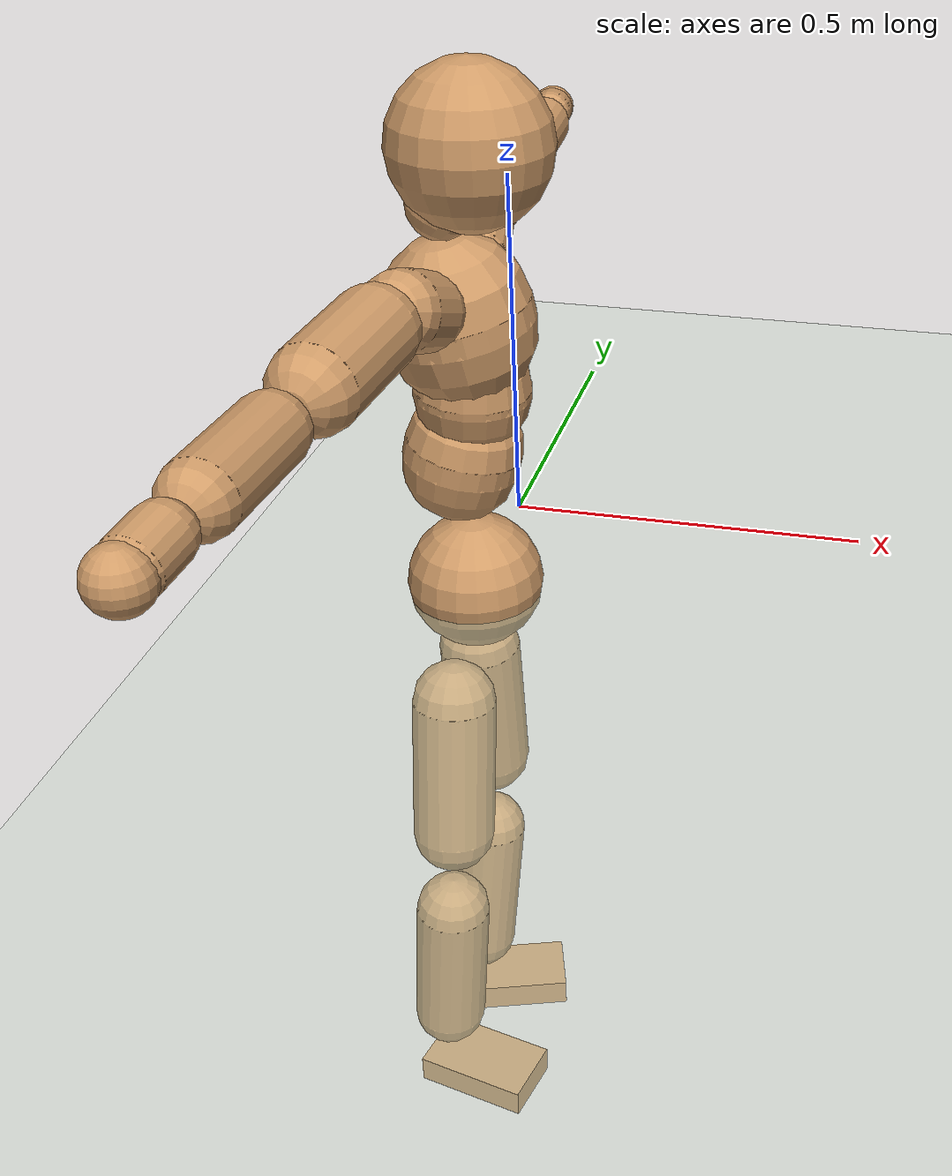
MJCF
<mujoco model="humanoid">
  <compiler coordinate="local" angle="radian"/>
  <default>
    <joint damping="0.0" armature="0.01" stiffness="0.0" limited="true"/>
    <geom conaffinity="1" condim="3" contype="7" margin="0.001" rgba="0.8 0.6 .4 1"/>
  </default>
  <asset>
    <texture type="skybox" builtin="gradient" rgb1=".4 .5 .6" rgb2="0 0 0" width="100" height="100"/>
    <texture builtin="flat" height="1278" mark="cross" markrgb="1 1 1" name="texgeom" random="0.01" rgb1="0.8 0.6 0.4" rgb2="0.8 0.6 0.4" type="cube" width="127"/>
    <texture builtin="checker" height="100" name="texplane" rgb1="0 0 0" rgb2="0.8 0.8 0.8" type="2d" width="100"/>
    <material name="MatPlane" reflectance="0.5" shininess="1" specular="1" texrepeat="60 60" texture="texplane"/>
    <material name="geom" texture="texgeom" texuniform="true"/>
  </asset>
  <worldbody>
    <light cutoff="100" diffuse="1 1 1" dir="-0 0 -1.3" directional="true" exponent="1" pos="0 0 1.3" specular=".1 .1 .1"/>
    <geom conaffinity="1" condim="3" name="floor" pos="0 0 0" rgba="0.8 0.9 0.8 1" size="100 100 .2" type="plane" material="MatPlane"/>
    <body name="Pelvis" pos="0.0016 -0.2333 0.0153">
      <freejoint name="Pelvis"/>
      <geom type="sphere" contype="1" conaffinity="1" density="500" size="0.0919" pos="0.0000 0.0000 0.0000" name="Pelvis"/>
      <body name="L_Hip" pos="-0.0212 0.0569 -0.08">
        <joint name="L_Hip_x" type="hinge" pos="0 0 0" axis="1 0 0" stiffness="800" damping="80" armature="0.02" range="-180.0000 180.0000"/>
        <joint name="L_Hip_y" type="hinge" pos="0 0 0" axis="0 1 0" stiffness="800" damping="80" armature="0.02" range="-180.0000 180.0000"/>
        <joint name="L_Hip_z" type="hinge" pos="0 0 0" axis="0 0 1" stiffness="800" damping="80" armature="0.02" range="-180.0000 180.0000"/>
        <geom type="capsule" contype="1" conaffinity="1" density="500" fromto="0.0004 0.0076 -0.0717 0.0014 0.0305 -0.2870" size="0.0578" name="L_Hip"/>
        <body name="L_Knee" pos="0.0018 0.0381 -0.3587">
          <joint name="L_Knee_x" type="hinge" pos="0 0 0" axis="1 0 0" stiffness="800" damping="80" armature="0.02" range="-180.0000 180.0000"/>
          <joint name="L_Knee_y" type="hinge" pos="0 0 0" axis="0 1 0" stiffness="800" damping="80" armature="0.02" range="-180.0000 180.0000"/>
          <joint name="L_Knee_z" type="hinge" pos="0 0 0" axis="0 0 1" stiffness="800" damping="80" armature="0.02" range="-180.0000 180.0000"/>
          <geom type="capsule" contype="1" conaffinity="1" density="500" fromto="-0.0074 -0.0027 -0.0761 -0.0296 -0.0110 -0.3043" size="0.0526" name="L_Knee"/>
          <body name="L_Ankle" pos="-0.0369 -0.0137 -0.3804">
            <joint name="L_Ankle_x" type="hinge" pos="0 0 0" axis="1 0 0" stiffness="800" damping="80" armature="0.02" range="-180.0000 180.0000"/>
            <joint name="L_Ankle_y" type="hinge" pos="0 0 0" axis="0 1 0" stiffness="800" damping="80" armature="0.02" range="-180.0000 180.0000"/>
            <joint name="L_Ankle_z" type="hinge" pos="0 0 0" axis="0 0 1" stiffness="800" damping="80" armature="0.02" range="-180.0000 180.0000"/>
            <geom type="box" contype="1" conaffinity="1" density="500" pos="0.0572 0.0186 -0.0273" size="0.0805 0.0481 0.0216" quat="0.9877 0.0000 0.0000 0.1564" name="L_Ankle"/>
            <body name="L_Toe" pos="0.1143 0.0371 -0.0547">
              <joint name="L_Toe_x" type="hinge" pos="0 0 0" axis="1 0 0" stiffness="500" damping="50" armature="0.02" range="-180.0000 180.0000"/>
              <joint name="L_Toe_y" type="hinge" pos="0 0 0" axis="0 1 0" stiffness="500" damping="50" armature="0.02" range="-180.0000 180.0000"/>
              <joint name="L_Toe_z" type="hinge" pos="0 0 0" axis="0 0 1" stiffness="500" damping="50" armature="0.02" range="-180.0000 180.0000"/>
              <geom type="box" contype="1" conaffinity="1" density="500" pos="0.0000 0.0000 0.0270" size="0.001 0.0024 0.0011" quat="0.9869 0.0000 0.0000 0.1616" name="L_Toe"/>
            </body>
          </body>
        </body>
      </body>
      <body name="R_Hip" pos="-0.0173 -0.0601 -0.0882">
        <joint name="R_Hip_x" type="hinge" pos="0 0 0" axis="1 0 0" stiffness="800" damping="80" armature="0.02" range="-180.0000 180.0000"/>
        <joint name="R_Hip_y" type="hinge" pos="0 0 0" axis="0 1 0" stiffness="800" damping="80" armature="0.02" range="-180.0000 180.0000"/>
        <joint name="R_Hip_z" type="hinge" pos="0 0 0" axis="0 0 1" stiffness="800" damping="80" armature="0.02" range="-180.0000 180.0000"/>
        <geom type="capsule" contype="1" conaffinity="1" density="500" fromto="-0.0016 -0.0079 -0.0710 -0.0062 -0.0317 -0.2839" size="0.0577" name="R_Hip"/>
        <body name="R_Knee" pos="-0.0078 -0.0396 -0.3548">
          <joint name="R_Knee_x" type="hinge" pos="0 0 0" axis="1 0 0" stiffness="800" damping="80" armature="0.02" range="-180.0000 180.0000"/>
          <joint name="R_Knee_y" type="hinge" pos="0 0 0" axis="0 1 0" stiffness="800" damping="80" armature="0.02" range="-180.0000 180.0000"/>
          <joint name="R_Knee_z" type="hinge" pos="0 0 0" axis="0 0 1" stiffness="800" damping="80" armature="0.02" range="-180.0000 180.0000"/>
          <geom type="capsule" contype="1" conaffinity="1" density="500" fromto="-0.0067 0.0036 -0.0749 -0.0268 0.0142 -0.2997" size="0.0533" name="R_Knee"/>
          <body name="R_Ankle" pos="-0.0335 0.0178 -0.3746">
            <joint name="R_Ankle_x" type="hinge" pos="0 0 0" axis="1 0 0" stiffness="800" damping="80" armature="0.02" range="-180.0000 180.0000"/>
            <joint name="R_Ankle_y" type="hinge" pos="0 0 0" axis="0 1 0" stiffness="800" damping="80" armature="0.02" range="-180.0000 180.0000"/>
            <joint name="R_Ankle_z" type="hinge" pos="0 0 0" axis="0 0 1" stiffness="800" damping="80" armature="0.02" range="-180.0000 180.0000"/>
            <geom type="box" contype="1" conaffinity="1" density="500" pos="0.0611 -0.0137 -0.0293" size="0.0849 0.0498 0.0214" quat="0.9939 0.0000 0.0000 -0.1102" name="R_Ankle"/>
            <body name="R_Toe" pos="0.1223 -0.0274 -0.0585">
              <joint name="R_Toe_x" type="hinge" pos="0 0 0" axis="1 0 0" stiffness="500" damping="50" armature="0.02" range="-180.0000 180.0000"/>
              <joint name="R_Toe_y" type="hinge" pos="0 0 0" axis="0 1 0" stiffness="500" damping="50" armature="0.02" range="-180.0000 180.0000"/>
              <joint name="R_Toe_z" type="hinge" pos="0 0 0" axis="0 0 1" stiffness="500" damping="50" armature="0.02" range="-180.0000 180.0000"/>
              <geom type="box" contype="1" conaffinity="1" density="500" pos="0.0000 0.0000 0.0308" size="0.001 0.0024 0.0011" quat="0.9949 0.0000 0.0000 -0.1008" name="R_Toe"/>
            </body>
          </body>
        </body>
      </body>
      <body name="Torso" pos="-0.0263 0.0039 0.1192">
        <joint name="Torso_x" type="hinge" pos="0 0 0" axis="1 0 0" stiffness="1000" damping="100" armature="0.02" range="-180.0000 180.0000"/>
        <joint name="Torso_y" type="hinge" pos="0 0 0" axis="0 1 0" stiffness="1000" damping="100" armature="0.02" range="-180.0000 180.0000"/>
        <joint name="Torso_z" type="hinge" pos="0 0 0" axis="0 0 1" stiffness="1000" damping="100" armature="0.02" range="-180.0000 180.0000"/>
        <geom type="capsule" contype="1" conaffinity="1" density="500" fromto="0.0188 0.0024 0.0792 0.0126 0.0016 0.0528" size="0.0772" name="Torso"/>
        <body name="Spine" pos="0.0314 0.004 0.132">
          <joint name="Spine_x" type="hinge" pos="0 0 0" axis="1 0 0" stiffness="1000" damping="100" armature="0.02" range="-180.0000 180.0000"/>
          <joint name="Spine_y" type="hinge" pos="0 0 0" axis="0 1 0" stiffness="1000" damping="100" armature="0.02" range="-180.0000 180.0000"/>
          <joint name="Spine_z" type="hinge" pos="0 0 0" axis="0 0 1" stiffness="1000" damping="100" armature="0.02" range="-180.0000 180.0000"/>
          <geom type="capsule" contype="1" conaffinity="1" density="500" fromto="0.0025 -0.0019 0.0319 0.0017 -0.0012 0.0213" size="0.0762" name="Spine"/>
          <body name="Chest" pos="0.0041 -0.0031 0.0531">
            <joint name="Chest_x" type="hinge" pos="0 0 0" axis="1 0 0" stiffness="1000" damping="100" armature="0.02" range="-180.0000 180.0000"/>
            <joint name="Chest_y" type="hinge" pos="0 0 0" axis="0 1 0" stiffness="1000" damping="100" armature="0.02" range="-180.0000 180.0000"/>
            <joint name="Chest_z" type="hinge" pos="0 0 0" axis="0 0 1" stiffness="1000" damping="100" armature="0.02" range="-180.0000 180.0000"/>
            <geom type="capsule" contype="1" conaffinity="1" density="500" fromto="-0.0155 -0.0055 0.0825 -0.0104 -0.0037 0.0550" size="0.0959" name="Chest"/>
            <body name="Neck" pos="-0.0349 -0.014 0.1987">
              <joint name="Neck_x" type="hinge" pos="0 0 0" axis="1 0 0" stiffness="500" damping="50" armature="0.02" range="-180.0000 180.0000"/>
              <joint name="Neck_y" type="hinge" pos="0 0 0" axis="0 1 0" stiffness="500" damping="50" armature="0.02" range="-180.0000 180.0000"/>
              <joint name="Neck_z" type="hinge" pos="0 0 0" axis="0 0 1" stiffness="500" damping="50" armature="0.02" range="-180.0000 180.0000"/>
              <geom type="capsule" contype="1" conaffinity="1" density="500" fromto="0.0095 0.0016 0.0174 0.0379 0.0062 0.0697" size="0.0436" name="Neck"/>
              <body name="Head" pos="0.0474 0.0078 0.0871">
                <joint name="Head_x" type="hinge" pos="0 0 0" axis="1 0 0" stiffness="500" damping="50" armature="0.02" range="-180.0000 180.0000"/>
                <joint name="Head_y" type="hinge" pos="0 0 0" axis="0 1 0" stiffness="500" damping="50" armature="0.02" range="-180.0000 180.0000"/>
                <joint name="Head_z" type="hinge" pos="0 0 0" axis="0 0 1" stiffness="500" damping="50" armature="0.02" range="-180.0000 180.0000"/>
                <geom type="sphere" contype="1" conaffinity="1" density="500" size="0.1015" pos="0.0000 0.0000 0.0000" name="Head"/>
              </body>
            </body>
            <body name="L_Thorax" pos="-0.0203 0.0666 0.1063">
              <joint name="L_Thorax_x" type="hinge" pos="0 0 0" axis="1 0 0" stiffness="500" damping="50" armature="0.02" range="-180.0000 180.0000"/>
              <joint name="L_Thorax_y" type="hinge" pos="0 0 0" axis="0 1 0" stiffness="500" damping="50" armature="0.02" range="-180.0000 180.0000"/>
              <joint name="L_Thorax_z" type="hinge" pos="0 0 0" axis="0 0 1" stiffness="500" damping="50" armature="0.02" range="-180.0000 180.0000"/>
              <geom type="capsule" contype="1" conaffinity="1" density="500" fromto="-0.0035 0.0231 0.0081 -0.0140 0.0926 0.0322" size="0.048" name="L_Thorax"/>
              <body name="L_Shoulder" pos="-0.0175 0.1157 0.0403">
                <joint name="L_Shoulder_x" type="hinge" pos="0 0 0" axis="1 0 0" stiffness="500" damping="50" armature="0.02" range="-720.0000 720.0000"/>
                <joint name="L_Shoulder_y" type="hinge" pos="0 0 0" axis="0 1 0" stiffness="500" damping="50" armature="0.02" range="-720.0000 720.0000"/>
                <joint name="L_Shoulder_z" type="hinge" pos="0 0 0" axis="0 0 1" stiffness="500" damping="50" armature="0.02" range="-720.0000 720.0000"/>
                <geom type="capsule" contype="1" conaffinity="1" density="500" fromto="-0.0028 0.0480 -0.0024 -0.0113 0.1919 -0.0095" size="0.0497" name="L_Shoulder"/>
                <body name="L_Elbow" pos="-0.0142 0.2399 -0.0119">
                  <joint name="L_Elbow_x" type="hinge" pos="0 0 0" axis="1 0 0" stiffness="500" damping="50" armature="0.02" range="-720.0000 720.0000"/>
                  <joint name="L_Elbow_y" type="hinge" pos="0 0 0" axis="0 1 0" stiffness="500" damping="50" armature="0.02" range="-720.0000 720.0000"/>
                  <joint name="L_Elbow_z" type="hinge" pos="0 0 0" axis="0 0 1" stiffness="500" damping="50" armature="0.02" range="-720.0000 720.0000"/>
                  <geom type="capsule" contype="1" conaffinity="1" density="500" fromto="-0.0021 0.0477 0.0015 -0.0084 0.1909 0.0061" size="0.0392" name="L_Elbow"/>
                  <body name="L_Wrist" pos="-0.0105 0.2386 0.0076">
                    <joint name="L_Wrist_x" type="hinge" pos="0 0 0" axis="1 0 0" stiffness="300" damping="30" armature="0.02" range="-180.0000 180.0000"/>
                    <joint name="L_Wrist_y" type="hinge" pos="0 0 0" axis="0 1 0" stiffness="300" damping="30" armature="0.02" range="-180.0000 180.0000"/>
                    <joint name="L_Wrist_z" type="hinge" pos="0 0 0" axis="0 0 1" stiffness="300" damping="30" armature="0.02" range="-180.0000 180.0000"/>
                    <geom type="capsule" contype="1" conaffinity="1" density="500" fromto="-0.0028 0.0156 -0.0019 -0.0111 0.0624 -0.0075" size="0.0311" name="L_Wrist"/>
                    <body name="L_Hand" pos="-0.0139 0.078 -0.0094">
                      <joint name="L_Hand_x" type="hinge" pos="0 0 0" axis="1 0 0" stiffness="300" damping="30" armature="0.02" range="-180.0000 180.0000"/>
                      <joint name="L_Hand_y" type="hinge" pos="0 0 0" axis="0 1 0" stiffness="300" damping="30" armature="0.02" range="-180.0000 180.0000"/>
                      <joint name="L_Hand_z" type="hinge" pos="0 0 0" axis="0 0 1" stiffness="300" damping="30" armature="0.02" range="-180.0000 180.0000"/>
                      <geom type="sphere" contype="1" conaffinity="1" density="500" size="0.0322" pos="0.0000 0.0000 0.0000" name="L_Hand"/>
                    </body>
                  </body>
                </body>
              </body>
            </body>
            <body name="R_Thorax" pos="-0.0225 -0.0801 0.1074">
              <joint name="R_Thorax_x" type="hinge" pos="0 0 0" axis="1 0 0" stiffness="500" damping="50" armature="0.02" range="-180.0000 180.0000"/>
              <joint name="R_Thorax_y" type="hinge" pos="0 0 0" axis="0 1 0" stiffness="500" damping="50" armature="0.02" range="-180.0000 180.0000"/>
              <joint name="R_Thorax_z" type="hinge" pos="0 0 0" axis="0 0 1" stiffness="500" damping="50" armature="0.02" range="-180.0000 180.0000"/>
              <geom type="capsule" contype="1" conaffinity="1" density="500" fromto="-0.0013 -0.0216 0.0084 -0.0054 -0.0862 0.0336" size="0.0488" name="R_Thorax"/>
              <body name="R_Shoulder" pos="-0.0067 -0.1078 0.042">
                <joint name="R_Shoulder_x" type="hinge" pos="0 0 0" axis="1 0 0" stiffness="500" damping="50" armature="0.02" range="-720.0000 720.0000"/>
                <joint name="R_Shoulder_y" type="hinge" pos="0 0 0" axis="0 1 0" stiffness="500" damping="50" armature="0.02" range="-720.0000 720.0000"/>
                <joint name="R_Shoulder_z" type="hinge" pos="0 0 0" axis="0 0 1" stiffness="500" damping="50" armature="0.02" range="-720.0000 720.0000"/>
                <geom type="capsule" contype="1" conaffinity="1" density="500" fromto="-0.0046 -0.0485 -0.0022 -0.0184 -0.1938 -0.0087" size="0.0515" name="R_Shoulder"/>
                <body name="R_Elbow" pos="-0.023 -0.2423 -0.0109">
                  <joint name="R_Elbow_x" type="hinge" pos="0 0 0" axis="1 0 0" stiffness="500" damping="50" armature="0.02" range="-720.0000 720.0000"/>
                  <joint name="R_Elbow_y" type="hinge" pos="0 0 0" axis="0 1 0" stiffness="500" damping="50" armature="0.02" range="-720.0000 720.0000"/>
                  <joint name="R_Elbow_z" type="hinge" pos="0 0 0" axis="0 0 1" stiffness="500" damping="50" armature="0.02" range="-720.0000 720.0000"/>
                  <geom type="capsule" contype="1" conaffinity="1" density="500" fromto="-0.0016 -0.0495 0.0013 -0.0064 -0.1980 0.0052" size="0.0411" name="R_Elbow"/>
                  <body name="R_Wrist" pos="-0.008 -0.2475 0.0066">
                    <joint name="R_Wrist_x" type="hinge" pos="0 0 0" axis="1 0 0" stiffness="300" damping="30" armature="0.02" range="-180.0000 180.0000"/>
                    <joint name="R_Wrist_y" type="hinge" pos="0 0 0" axis="0 1 0" stiffness="300" damping="30" armature="0.02" range="-180.0000 180.0000"/>
                    <joint name="R_Wrist_z" type="hinge" pos="0 0 0" axis="0 0 1" stiffness="300" damping="30" armature="0.02" range="-180.0000 180.0000"/>
                    <geom type="capsule" contype="1" conaffinity="1" density="500" fromto="-0.0018 -0.0164 -0.0016 -0.0072 -0.0657 -0.0062" size="0.0327" name="R_Wrist"/>
                    <body name="R_Hand" pos="-0.0089 -0.0821 -0.0078">
                      <joint name="R_Hand_x" type="hinge" pos="0 0 0" axis="1 0 0" stiffness="300" damping="30" armature="0.02" range="-180.0000 180.0000"/>
                      <joint name="R_Hand_y" type="hinge" pos="0 0 0" axis="0 1 0" stiffness="300" damping="30" armature="0.02" range="-180.0000 180.0000"/>
                      <joint name="R_Hand_z" type="hinge" pos="0 0 0" axis="0 0 1" stiffness="300" damping="30" armature="0.02" range="-180.0000 180.0000"/>
                      <geom type="sphere" contype="1" conaffinity="1" density="500" size="0.0336" pos="0.0000 0.0000 0.0000" name="R_Hand"/>
                    </body>
                  </body>
                </body>
              </body>
            </body>
          </body>
        </body>
      </body>
    </body>
  </worldbody>
  <actuator>
    <motor name="L_Hip_x" joint="L_Hip_x" gear="500"/>
    <motor name="L_Hip_y" joint="L_Hip_y" gear="500"/>
    <motor name="L_Hip_z" joint="L_Hip_z" gear="500"/>
    <motor name="L_Knee_x" joint="L_Knee_x" gear="500"/>
    <motor name="L_Knee_y" joint="L_Knee_y" gear="500"/>
    <motor name="L_Knee_z" joint="L_Knee_z" gear="500"/>
    <motor name="L_Ankle_x" joint="L_Ankle_x" gear="500"/>
    <motor name="L_Ankle_y" joint="L_Ankle_y" gear="500"/>
    <motor name="L_Ankle_z" joint="L_Ankle_z" gear="500"/>
    <motor name="L_Toe_x" joint="L_Toe_x" gear="500"/>
    <motor name="L_Toe_y" joint="L_Toe_y" gear="500"/>
    <motor name="L_Toe_z" joint="L_Toe_z" gear="500"/>
    <motor name="R_Hip_x" joint="R_Hip_x" gear="500"/>
    <motor name="R_Hip_y" joint="R_Hip_y" gear="500"/>
    <motor name="R_Hip_z" joint="R_Hip_z" gear="500"/>
    <motor name="R_Knee_x" joint="R_Knee_x" gear="500"/>
    <motor name="R_Knee_y" joint="R_Knee_y" gear="500"/>
    <motor name="R_Knee_z" joint="R_Knee_z" gear="500"/>
    <motor name="R_Ankle_x" joint="R_Ankle_x" gear="500"/>
    <motor name="R_Ankle_y" joint="R_Ankle_y" gear="500"/>
    <motor name="R_Ankle_z" joint="R_Ankle_z" gear="500"/>
    <motor name="R_Toe_x" joint="R_Toe_x" gear="500"/>
    <motor name="R_Toe_y" joint="R_Toe_y" gear="500"/>
    <motor name="R_Toe_z" joint="R_Toe_z" gear="500"/>
    <motor name="Torso_x" joint="Torso_x" gear="500"/>
    <motor name="Torso_y" joint="Torso_y" gear="500"/>
    <motor name="Torso_z" joint="Torso_z" gear="500"/>
    <motor name="Spine_x" joint="Spine_x" gear="500"/>
    <motor name="Spine_y" joint="Spine_y" gear="500"/>
    <motor name="Spine_z" joint="Spine_z" gear="500"/>
    <motor name="Chest_x" joint="Chest_x" gear="500"/>
    <motor name="Chest_y" joint="Chest_y" gear="500"/>
    <motor name="Chest_z" joint="Chest_z" gear="500"/>
    <motor name="Neck_x" joint="Neck_x" gear="500"/>
    <motor name="Neck_y" joint="Neck_y" gear="500"/>
    <motor name="Neck_z" joint="Neck_z" gear="500"/>
    <motor name="Head_x" joint="Head_x" gear="500"/>
    <motor name="Head_y" joint="Head_y" gear="500"/>
    <motor name="Head_z" joint="Head_z" gear="500"/>
    <motor name="L_Thorax_x" joint="L_Thorax_x" gear="500"/>
    <motor name="L_Thorax_y" joint="L_Thorax_y" gear="500"/>
    <motor name="L_Thorax_z" joint="L_Thorax_z" gear="500"/>
    <motor name="L_Shoulder_x" joint="L_Shoulder_x" gear="500"/>
    <motor name="L_Shoulder_y" joint="L_Shoulder_y" gear="500"/>
    <motor name="L_Shoulder_z" joint="L_Shoulder_z" gear="500"/>
    <motor name="L_Elbow_x" joint="L_Elbow_x" gear="500"/>
    <motor name="L_Elbow_y" joint="L_Elbow_y" gear="500"/>
    <motor name="L_Elbow_z" joint="L_Elbow_z" gear="500"/>
    <motor name="L_Wrist_x" joint="L_Wrist_x" gear="500"/>
    <motor name="L_Wrist_y" joint="L_Wrist_y" gear="500"/>
    <motor name="L_Wrist_z" joint="L_Wrist_z" gear="500"/>
    <motor name="L_Hand_x" joint="L_Hand_x" gear="500"/>
    <motor name="L_Hand_y" joint="L_Hand_y" gear="500"/>
    <motor name="L_Hand_z" joint="L_Hand_z" gear="500"/>
    <motor name="R_Thorax_x" joint="R_Thorax_x" gear="500"/>
    <motor name="R_Thorax_y" joint="R_Thorax_y" gear="500"/>
    <motor name="R_Thorax_z" joint="R_Thorax_z" gear="500"/>
    <motor name="R_Shoulder_x" joint="R_Shoulder_x" gear="500"/>
    <motor name="R_Shoulder_y" joint="R_Shoulder_y" gear="500"/>
    <motor name="R_Shoulder_z" joint="R_Shoulder_z" gear="500"/>
    <motor name="R_Elbow_x" joint="R_Elbow_x" gear="500"/>
    <motor name="R_Elbow_y" joint="R_Elbow_y" gear="500"/>
    <motor name="R_Elbow_z" joint="R_Elbow_z" gear="500"/>
    <motor name="R_Wrist_x" joint="R_Wrist_x" gear="500"/>
    <motor name="R_Wrist_y" joint="R_Wrist_y" gear="500"/>
    <motor name="R_Wrist_z" joint="R_Wrist_z" gear="500"/>
    <motor name="R_Hand_x" joint="R_Hand_x" gear="500"/>
    <motor name="R_Hand_y" joint="R_Hand_y" gear="500"/>
    <motor name="R_Hand_z" joint="R_Hand_z" gear="500"/>
  </actuator>
  <contact>
    <exclude body1="Torso" body2="Chest"/>
    <exclude body1="Head" body2="Chest"/>
    <exclude body1="R_Knee" body2="R_Toe"/>
    <exclude body1="R_Knee" body2="L_Ankle"/>
    <exclude body1="R_Knee" body2="L_Toe"/>
    <exclude body1="L_Knee" body2="L_Toe"/>
    <exclude body1="L_Knee" body2="R_Ankle"/>
    <exclude body1="L_Knee" body2="R_Toe"/>
    <exclude body1="L_Shoulder" body2="Chest"/>
    <exclude body1="R_Shoulder" body2="Chest"/>
  </contact>
  <sensor/>
  <size njmax="700" nconmax="700"/>
</mujoco>
